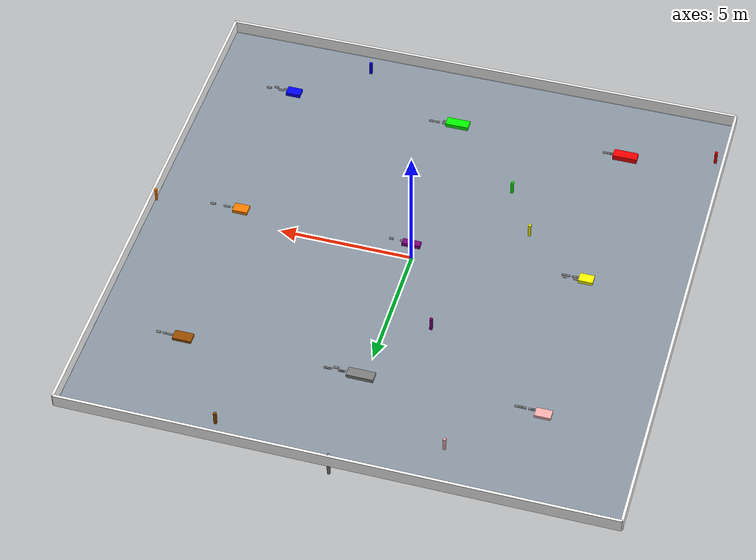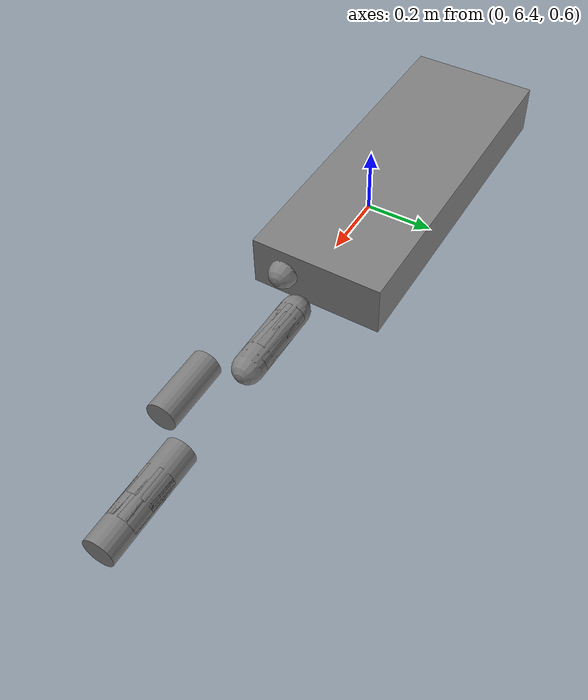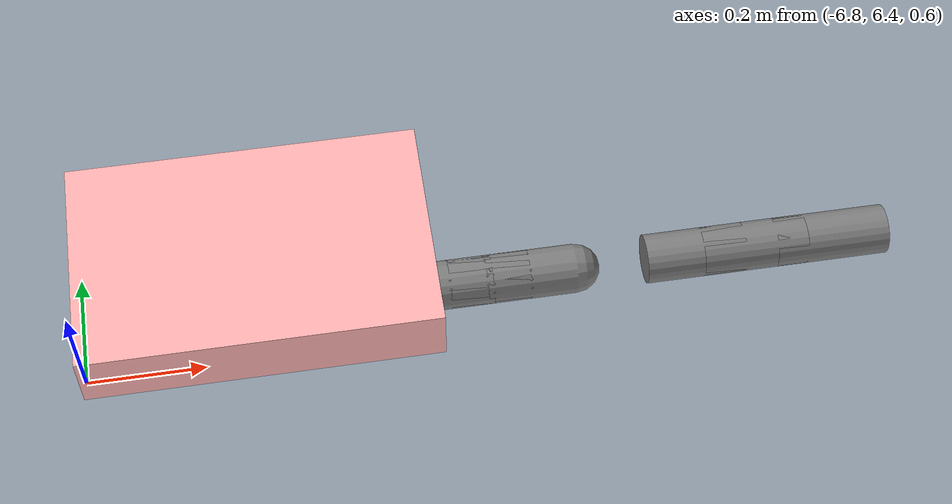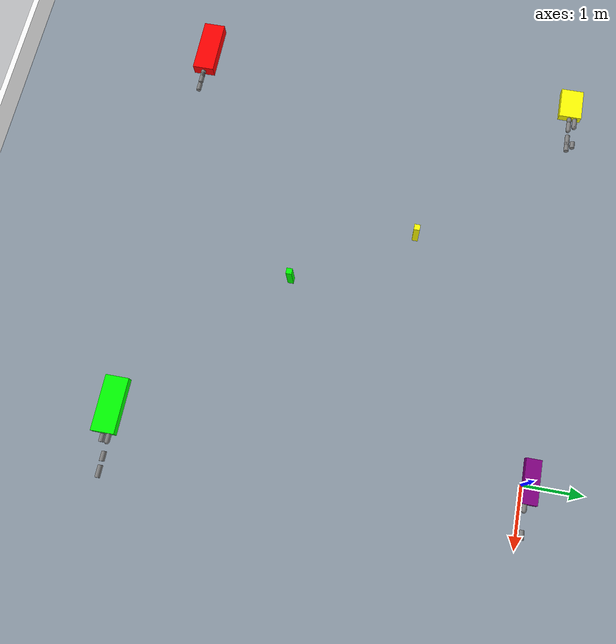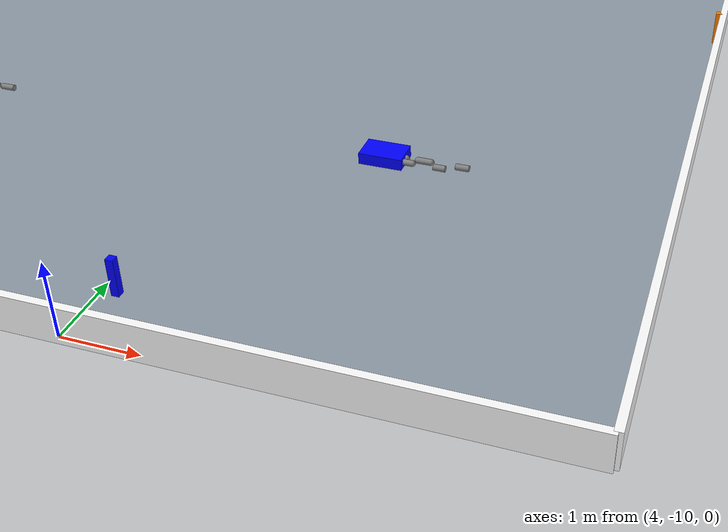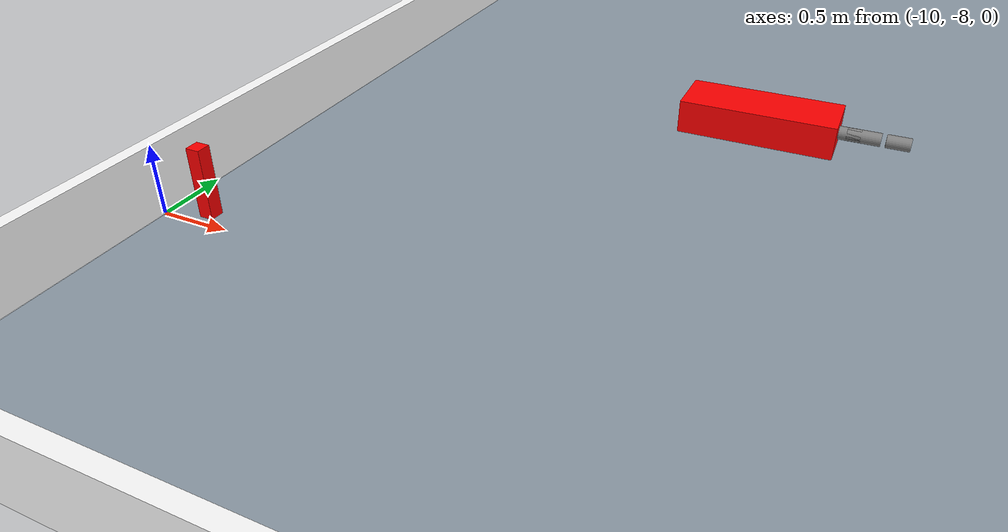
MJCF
<mujoco><option timestep="0.002" /><asset><texture name="checkered" type="2d" builtin="checker" rgb1="0.2 0.3 0.4" rgb2="0.9 0.9 0.9" width="512" height="512" /><material name="MatCheckered" texture="checkered" reflectance="0.5" /><material name="MatPlane" reflectance="0.5" shininess="1" specular="1" /><material name="red" rgba="1 0 0 1" /><material name="green" rgba="0 1 0 1" /><material name="blue" rgba="0 0 1 1" /><material name="yellow" rgba="1 1 0 1" /><material name="purple" rgba="0.5 0 0.5 1" /><material name="orange" rgba="1 0.5 0 1" /><material name="pink" rgba="1 0.7 0.7 1" /><material name="grey" rgba="0.5 0.5 0.5 1" /><material name="brown" rgba="0.6 0.3 0 1" /></asset><worldbody><geom name="floor" type="plane" size="10 10 0.1" pos="0 0 0" material="MatCheckered" /><body name="torso_0" pos="-6.5 -6.5 0.75"><geom name="torso_geom_torso_0" type="box" size="0.45673066282082714 0.18031773918686675 0.09983389958844013" pos="0 0 0" contype="1" conaffinity="1" material="red" /><joint name="torso_0_root" type="free" armature="0" damping="0" limited="false" /><site name="torso_0_site" pos="0 0 0" type="sphere" size="0.01" /><body name="leg_0_1" pos="-0.22836533141041357 0 0"><geom name="leg_0_1_upper_geom" type="capsule" fromto="0.0 0.0 0.0 0.19134875010583652 0.0 0.0" size="0.04" /><joint name="leg_0_1_hip_joint" type="ball" damping="2.0" /><body name="leg_0_1_lower" pos="0.19134875010583652 0.0 0.0"><geom name="leg_0_1_lower_geom" type="capsule" fromto="0.19134875010583652 0.0 0.0 0.37852999139530136 0.0 0.0" size="0.04" /><joint name="leg_0_1_knee_joint" type="hinge" axis="0 1 0" range="-90 90" damping="4.0" limited="true" /><body name="leg_0_1_foot" pos="0.37852999139530136 0.0 0.0"><geom name="leg_0_1_foot_geom" type="cylinder" fromto="0.37852999139530136 0.0 0.0 0.5137162706306135 0.0 0.0" size="0.04" /><joint name="leg_0_1_ankle_joint" type="ball" damping="6.0" /></body></body></body><body name="leg_0_2" pos="-0.22836533141041357 0 0"><geom name="leg_0_2_upper_geom" type="capsule" fromto="0.0 0.0 0.0 0.1251175439799218 0.0 0.0" size="0.04" /><joint name="leg_0_2_hip_joint" type="ball" damping="2.0" /><body name="leg_0_2_lower" pos="0.1251175439799218 0.0 0.0"><geom name="leg_0_2_lower_geom" type="capsule" fromto="0.1251175439799218 0.0 0.0 0.3032230212060134 0.0 0.0" size="0.04" /><joint name="leg_0_2_knee_joint" type="hinge" axis="0 1 0" range="-90 90" damping="4.0" limited="true" /><body name="leg_0_2_foot" pos="0.3032230212060134 0.0 0.0"><geom name="leg_0_2_foot_geom" type="cylinder" fromto="0.3032230212060134 0.0 0.0 0.49339589541612516 0.0 0.0" size="0.04" /><joint name="leg_0_2_ankle_joint" type="ball" damping="6.0" /></body></body></body><body name="leg_0_3" pos="-0.22836533141041357 0 0"><geom name="leg_0_3_upper_geom" type="capsule" fromto="0.0 0.0 0.0 0.14583288129909064 0.0 0.0" size="0.04" /><joint name="leg_0_3_hip_joint" type="ball" damping="2.0" /><body name="leg_0_3_lower" pos="0.14583288129909064 0.0 0.0"><geom name="leg_0_3_lower_geom" type="capsule" fromto="0.14583288129909064 0.0 0.0 0.2670044036594843 0.0 0.0" size="0.04" /><joint name="leg_0_3_knee_joint" type="hinge" axis="0 1 0" range="-90 90" damping="4.0" limited="true" /><body name="leg_0_3_foot" pos="0.2670044036594843 0.0 0.0"><geom name="leg_0_3_foot_geom" type="cylinder" fromto="0.2670044036594843 0.0 0.0 0.3973557180265023 0.0 0.0" size="0.04" /><joint name="leg_0_3_ankle_joint" type="ball" damping="6.0" /></body></body></body></body><geom name="flag_0" type="box" size="0.05 0.05 0.5" pos="-9.715502872661746 -7.882223308985947 0" material="red" contype="1" conaffinity="1" /><body name="torso_1" pos="0 -6.5 0.75"><geom name="torso_geom_torso_1" type="box" size="0.4361155428149704 0.1853569618573218 0.07967056476117033" pos="0 0 0" contype="1" conaffinity="2" material="green" /><joint name="torso_1_root" type="free" armature="0" damping="0" limited="false" /><site name="torso_1_site" pos="0 0 0" type="sphere" size="0.01" /><body name="leg_1_1" pos="0 0.0926784809286609 0"><geom name="leg_1_1_upper_geom" type="capsule" fromto="0.0 0.0 0.0 0.11647771207757 0.0 0.0" size="0.04" /><joint name="leg_1_1_hip_joint" type="ball" damping="2.0" /><body name="leg_1_1_lower" pos="0.11647771207757 0.0 0.0"><geom name="leg_1_1_lower_geom" type="capsule" fromto="0.11647771207757 0.0 0.0 0.29065504208876797 0.0 0.0" size="0.04" /><joint name="leg_1_1_knee_joint" type="hinge" axis="0 1 0" range="-90 90" damping="4.0" limited="true" /><body name="leg_1_1_foot" pos="0.29065504208876797 0.0 0.0"><geom name="leg_1_1_foot_geom" type="cylinder" fromto="0.29065504208876797 0.0 0.0 0.4394491817589016 0.0 0.0" size="0.04" /><joint name="leg_1_1_ankle_joint" type="ball" damping="6.0" /></body></body></body><body name="leg_1_2" pos="0 0.0926784809286609 0"><geom name="leg_1_2_upper_geom" type="capsule" fromto="0.0 0.0 0.0 0.19848603360304248 0.0 0.0" size="0.04" /><joint name="leg_1_2_hip_joint" type="ball" damping="2.0" /><body name="leg_1_2_lower" pos="0.19848603360304248 0.0 0.0"><geom name="leg_1_2_lower_geom" type="capsule" fromto="0.19848603360304248 0.0 0.0 0.35335942091159783 0.0 0.0" size="0.04" /><joint name="leg_1_2_knee_joint" type="hinge" axis="0 1 0" range="-90 90" damping="4.0" limited="true" /><body name="leg_1_2_foot" pos="0.35335942091159783 0.0 0.0"><geom name="leg_1_2_foot_geom" type="cylinder" fromto="0.35335942091159783 0.0 0.0 0.5411384136035422 0.0 0.0" size="0.04" /><joint name="leg_1_2_ankle_joint" type="ball" damping="6.0" /></body></body></body><body name="leg_1_3" pos="-0.2180577714074852 0 0"><geom name="leg_1_3_upper_geom" type="capsule" fromto="0.0 0.0 0.0 0.1322498566570886 0.0 0.0" size="0.04" /><joint name="leg_1_3_hip_joint" type="ball" damping="2.0" /><body name="leg_1_3_lower" pos="0.1322498566570886 0.0 0.0"><geom name="leg_1_3_lower_geom" type="capsule" fromto="0.1322498566570886 0.0 0.0 0.26793260223526116 0.0 0.0" size="0.04" /><joint name="leg_1_3_knee_joint" type="hinge" axis="0 1 0" range="-90 90" damping="4.0" limited="true" /><body name="leg_1_3_foot" pos="0.26793260223526116 0.0 0.0"><geom name="leg_1_3_foot_geom" type="cylinder" fromto="0.26793260223526116 0.0 0.0 0.38986656143791676 0.0 0.0" size="0.04" /><joint name="leg_1_3_ankle_joint" type="ball" damping="6.0" /></body></body></body></body><geom name="flag_1" type="box" size="0.05 0.05 0.5" pos="-2.702629906381044 -4.276086424985271 0" material="green" contype="1" conaffinity="2" /><body name="torso_2" pos="6.5 -6.5 0.75"><geom name="torso_geom_torso_2" type="box" size="0.27710142291960344 0.18385307976890158 0.07352698970238292" pos="0 0 0" contype="1" conaffinity="3" material="blue" /><joint name="torso_2_root" type="free" armature="0" damping="0" limited="false" /><site name="torso_2_site" pos="0 0 0" type="sphere" size="0.01" /><body name="leg_2_1" pos="0.13855071145980172 0 0"><geom name="leg_2_1_upper_geom" type="capsule" fromto="0.0 0.0 0.0 0.1475986095326487 0.0 0.0" size="0.04" /><joint name="leg_2_1_hip_joint" type="ball" damping="2.0" /><body name="leg_2_1_lower" pos="0.1475986095326487 0.0 0.0"><geom name="leg_2_1_lower_geom" type="capsule" fromto="0.1475986095326487 0.0 0.0 0.3147290617853762 0.0 0.0" size="0.04" /><joint name="leg_2_1_knee_joint" type="hinge" axis="0 1 0" range="-90 90" damping="4.0" limited="true" /><body name="leg_2_1_foot" pos="0.3147290617853762 0.0 0.0"><geom name="leg_2_1_foot_geom" type="cylinder" fromto="0.3147290617853762 0.0 0.0 0.48499941278908454 0.0 0.0" size="0.04" /><joint name="leg_2_1_ankle_joint" type="ball" damping="6.0" /></body></body></body><body name="leg_2_2" pos="0 -0.09192653988445079 0"><geom name="leg_2_2_upper_geom" type="capsule" fromto="0.0 0.0 0.0 0.12382817809722703 0.0 0.0" size="0.04" /><joint name="leg_2_2_hip_joint" type="ball" damping="2.0" /><body name="leg_2_2_lower" pos="0.12382817809722703 0.0 0.0"><geom name="leg_2_2_lower_geom" type="capsule" fromto="0.12382817809722703 0.0 0.0 0.2685634560439831 0.0 0.0" size="0.04" /><joint name="leg_2_2_knee_joint" type="hinge" axis="0 1 0" range="-90 90" damping="4.0" limited="true" /><body name="leg_2_2_foot" pos="0.2685634560439831 0.0 0.0"><geom name="leg_2_2_foot_geom" type="cylinder" fromto="0.2685634560439831 0.0 0.0 0.41962847793161295 0.0 0.0" size="0.04" /><joint name="leg_2_2_ankle_joint" type="ball" damping="6.0" /></body></body></body></body><geom name="flag_2" type="box" size="0.05 0.05 0.5" pos="4.200801388571732 -9.138879638256798 0" material="blue" contype="1" conaffinity="3" /><body name="torso_3" pos="-6.5 0 0.75"><geom name="torso_geom_torso_3" type="box" size="0.2667361206778316 0.1890291781063165 0.06752250962156768" pos="0 0 0" contype="1" conaffinity="4" material="yellow" /><joint name="torso_3_root" type="free" armature="0" damping="0" limited="false" /><site name="torso_3_site" pos="0 0 0" type="sphere" size="0.01" /><body name="leg_3_1" pos="0.1333680603389158 0 0"><geom name="leg_3_1_upper_geom" type="capsule" fromto="0.0 0.0 0.0 0.11752958113271068 0.0 0.0" size="0.04" /><joint name="leg_3_1_hip_joint" type="ball" damping="2.0" /><body name="leg_3_1_lower" pos="0.11752958113271068 0.0 0.0"><geom name="leg_3_1_lower_geom" type="capsule" fromto="0.11752958113271068 0.0 0.0 0.24753236078776086 0.0 0.0" size="0.04" /><joint name="leg_3_1_knee_joint" type="hinge" axis="0 1 0" range="-90 90" damping="4.0" limited="true" /><body name="leg_3_1_foot" pos="0.24753236078776086 0.0 0.0"><geom name="leg_3_1_foot_geom" type="cylinder" fromto="0.24753236078776086 0.0 0.0 0.4023332760425279 0.0 0.0" size="0.04" /><joint name="leg_3_1_ankle_joint" type="ball" damping="6.0" /></body></body></body><body name="leg_3_2" pos="0 0.09451458905315825 0"><geom name="leg_3_2_upper_geom" type="capsule" fromto="0.0 0.0 0.0 0.12786140470453047 0.0 0.0" size="0.04" /><joint name="leg_3_2_hip_joint" type="ball" damping="2.0" /><body name="leg_3_2_lower" pos="0.12786140470453047 0.0 0.0"><geom name="leg_3_2_lower_geom" type="capsule" fromto="0.12786140470453047 0.0 0.0 0.29212740537773285 0.0 0.0" size="0.04" /><joint name="leg_3_2_knee_joint" type="hinge" axis="0 1 0" range="-90 90" damping="4.0" limited="true" /><body name="leg_3_2_foot" pos="0.29212740537773285 0.0 0.0"><geom name="leg_3_2_foot_geom" type="cylinder" fromto="0.29212740537773285 0.0 0.0 0.4096014507658057 0.0 0.0" size="0.04" /><joint name="leg_3_2_ankle_joint" type="ball" damping="6.0" /></body></body></body><body name="leg_3_3" pos="-0.1333680603389158 0 0"><geom name="leg_3_3_upper_geom" type="capsule" fromto="0.0 0.0 0.0 0.1618008323869887 0.0 0.0" size="0.04" /><joint name="leg_3_3_hip_joint" type="ball" damping="2.0" /><body name="leg_3_3_lower" pos="0.1618008323869887 0.0 0.0"><geom name="leg_3_3_lower_geom" type="capsule" fromto="0.1618008323869887 0.0 0.0 0.2867447121978153 0.0 0.0" size="0.04" /><joint name="leg_3_3_knee_joint" type="hinge" axis="0 1 0" range="-90 90" damping="4.0" limited="true" /><body name="leg_3_3_foot" pos="0.2867447121978153 0.0 0.0"><geom name="leg_3_3_foot_geom" type="cylinder" fromto="0.2867447121978153 0.0 0.0 0.47296085840796076 0.0 0.0" size="0.04" /><joint name="leg_3_3_ankle_joint" type="ball" damping="6.0" /></body></body></body></body><geom name="flag_3" type="box" size="0.05 0.05 0.5" pos="-3.8584770375979724 -2.296161239787576 0" material="yellow" contype="1" conaffinity="4" /><body name="torso_4" pos="0 0 0.75"><geom name="torso_geom_torso_4" type="box" size="0.33677437006201405 0.12088301522371618 0.07653703224081529" pos="0 0 0" contype="1" conaffinity="5" material="purple" /><joint name="torso_4_root" type="free" armature="0" damping="0" limited="false" /><site name="torso_4_site" pos="0 0 0" type="sphere" size="0.01" /><body name="leg_4_1" pos="0 -0.06044150761185809 0"><geom name="leg_4_1_upper_geom" type="capsule" fromto="0.0 0.0 0.0 0.14596158616241114 0.0 0.0" size="0.04" /><joint name="leg_4_1_hip_joint" type="ball" damping="2.0" /><body name="leg_4_1_lower" pos="0.14596158616241114 0.0 0.0"><geom name="leg_4_1_lower_geom" type="capsule" fromto="0.14596158616241114 0.0 0.0 0.279742887019907 0.0 0.0" size="0.04" /><joint name="leg_4_1_knee_joint" type="hinge" axis="0 1 0" range="-90 90" damping="4.0" limited="true" /><body name="leg_4_1_foot" pos="0.279742887019907 0.0 0.0"><geom name="leg_4_1_foot_geom" type="cylinder" fromto="0.279742887019907 0.0 0.0 0.4237752228046575 0.0 0.0" size="0.04" /><joint name="leg_4_1_ankle_joint" type="ball" damping="6.0" /></body></body></body></body><geom name="flag_4" type="box" size="0.05 0.05 0.5" pos="-1.595599832349964 3.1151342146053302 0" material="purple" contype="1" conaffinity="5" /><body name="torso_5" pos="6.5 0 0.75"><geom name="torso_geom_torso_5" type="box" size="0.27910796986527076 0.19385913140496652 0.06810284901716221" pos="0 0 0" contype="1" conaffinity="6" material="orange" /><joint name="torso_5_root" type="free" armature="0" damping="0" limited="false" /><site name="torso_5_site" pos="0 0 0" type="sphere" size="0.01" /><body name="leg_5_1" pos="0.13955398493263538 0 0"><geom name="leg_5_1_upper_geom" type="capsule" fromto="0.0 0.0 0.0 0.15884223762782185 0.0 0.0" size="0.04" /><joint name="leg_5_1_hip_joint" type="ball" damping="2.0" /><body name="leg_5_1_lower" pos="0.15884223762782185 0.0 0.0"><geom name="leg_5_1_lower_geom" type="capsule" fromto="0.15884223762782185 0.0 0.0 0.3461261877342965 0.0 0.0" size="0.04" /><joint name="leg_5_1_knee_joint" type="hinge" axis="0 1 0" range="-90 90" damping="4.0" limited="true" /><body name="leg_5_1_foot" pos="0.3461261877342965 0.0 0.0"><geom name="leg_5_1_foot_geom" type="cylinder" fromto="0.3461261877342965 0.0 0.0 0.5322099372082175 0.0 0.0" size="0.04" /><joint name="leg_5_1_ankle_joint" type="ball" damping="6.0" /></body></body></body></body><geom name="flag_5" type="box" size="0.05 0.05 0.5" pos="9.982538084529573 -0.34918260237459164 0" material="orange" contype="1" conaffinity="6" /><body name="torso_6" pos="-6.5 6.5 0.75"><geom name="torso_geom_torso_6" type="box" size="0.29137715618754184 0.18632517681537722 0.05353026217323795" pos="0 0 0" contype="1" conaffinity="7" material="pink" /><joint name="torso_6_root" type="free" armature="0" damping="0" limited="false" /><site name="torso_6_site" pos="0 0 0" type="sphere" size="0.01" /><body name="leg_6_1" pos="0 -0.09316258840768861 0"><geom name="leg_6_1_upper_geom" type="capsule" fromto="0.0 0.0 0.0 0.18501982875361223 0.0 0.0" size="0.04" /><joint name="leg_6_1_hip_joint" type="ball" damping="2.0" /><body name="leg_6_1_lower" pos="0.18501982875361223 0.0 0.0"><geom name="leg_6_1_lower_geom" type="capsule" fromto="0.18501982875361223 0.0 0.0 0.33158454665107273 0.0 0.0" size="0.04" /><joint name="leg_6_1_knee_joint" type="hinge" axis="0 1 0" range="-90 90" damping="4.0" limited="true" /><body name="leg_6_1_foot" pos="0.33158454665107273 0.0 0.0"><geom name="leg_6_1_foot_geom" type="cylinder" fromto="0.33158454665107273 0.0 0.0 0.5161514691046316 0.0 0.0" size="0.04" /><joint name="leg_6_1_ankle_joint" type="ball" damping="6.0" /></body></body></body><body name="leg_6_2" pos="0 -0.09316258840768861 0"><geom name="leg_6_2_upper_geom" type="capsule" fromto="0.0 0.0 0.0 0.12628140099512358 0.0 0.0" size="0.04" /><joint name="leg_6_2_hip_joint" type="ball" damping="2.0" /><body name="leg_6_2_lower" pos="0.12628140099512358 0.0 0.0"><geom name="leg_6_2_lower_geom" type="capsule" fromto="0.12628140099512358 0.0 0.0 0.25289257737624526 0.0 0.0" size="0.04" /><joint name="leg_6_2_knee_joint" type="hinge" axis="0 1 0" range="-90 90" damping="4.0" limited="true" /><body name="leg_6_2_foot" pos="0.25289257737624526 0.0 0.0"><geom name="leg_6_2_foot_geom" type="cylinder" fromto="0.25289257737624526 0.0 0.0 0.416903476540581 0.0 0.0" size="0.04" /><joint name="leg_6_2_ankle_joint" type="ball" damping="6.0" /></body></body></body><body name="leg_6_3" pos="0 -0.09316258840768861 0"><geom name="leg_6_3_upper_geom" type="capsule" fromto="0.0 0.0 0.0 0.15481660872583805 0.0 0.0" size="0.04" /><joint name="leg_6_3_hip_joint" type="ball" damping="2.0" /><body name="leg_6_3_lower" pos="0.15481660872583805 0.0 0.0"><geom name="leg_6_3_lower_geom" type="capsule" fromto="0.15481660872583805 0.0 0.0 0.2857181441085962 0.0 0.0" size="0.04" /><joint name="leg_6_3_knee_joint" type="hinge" axis="0 1 0" range="-90 90" damping="4.0" limited="true" /><body name="leg_6_3_foot" pos="0.2857181441085962 0.0 0.0"><geom name="leg_6_3_foot_geom" type="cylinder" fromto="0.2857181441085962 0.0 0.0 0.45838974200002824 0.0 0.0" size="0.04" /><joint name="leg_6_3_ankle_joint" type="ball" damping="6.0" /></body></body></body></body><geom name="flag_6" type="box" size="0.05 0.05 0.5" pos="-3.4815412435326354 8.27169600538735 0" material="pink" contype="1" conaffinity="7" /><body name="torso_7" pos="0 6.5 0.75"><geom name="torso_geom_torso_7" type="box" size="0.4869551706574689 0.18423844265559644 0.07303456001066934" pos="0 0 0" contype="1" conaffinity="8" material="grey" /><joint name="torso_7_root" type="free" armature="0" damping="0" limited="false" /><site name="torso_7_site" pos="0 0 0" type="sphere" size="0.01" /><body name="leg_7_1" pos="0 -0.09211922132779822 0"><geom name="leg_7_1_upper_geom" type="capsule" fromto="0.0 0.0 0.0 0.15041793830888592 0.0 0.0" size="0.04" /><joint name="leg_7_1_hip_joint" type="ball" damping="2.0" /><body name="leg_7_1_lower" pos="0.15041793830888592 0.0 0.0"><geom name="leg_7_1_lower_geom" type="capsule" fromto="0.15041793830888592 0.0 0.0 0.3398287850489801 0.0 0.0" size="0.04" /><joint name="leg_7_1_knee_joint" type="hinge" axis="0 1 0" range="-90 90" damping="4.0" limited="true" /><body name="leg_7_1_foot" pos="0.3398287850489801 0.0 0.0"><geom name="leg_7_1_foot_geom" type="cylinder" fromto="0.3398287850489801 0.0 0.0 0.5199871593237864 0.0 0.0" size="0.04" /><joint name="leg_7_1_ankle_joint" type="ball" damping="6.0" /></body></body></body><body name="leg_7_2" pos="0.24347758532873445 0 0"><geom name="leg_7_2_upper_geom" type="capsule" fromto="0.0 0.0 0.0 0.1920029125222797 0.0 0.0" size="0.04" /><joint name="leg_7_2_hip_joint" type="ball" damping="2.0" /><body name="leg_7_2_lower" pos="0.1920029125222797 0.0 0.0"><geom name="leg_7_2_lower_geom" type="capsule" fromto="0.1920029125222797 0.0 0.0 0.3108622592127082 0.0 0.0" size="0.04" /><joint name="leg_7_2_knee_joint" type="hinge" axis="0 1 0" range="-90 90" damping="4.0" limited="true" /><body name="leg_7_2_foot" pos="0.3108622592127082 0.0 0.0"><geom name="leg_7_2_foot_geom" type="cylinder" fromto="0.3108622592127082 0.0 0.0 0.4657449276293985 0.0 0.0" size="0.04" /><joint name="leg_7_2_ankle_joint" type="ball" damping="6.0" /></body></body></body><body name="leg_7_3" pos="0.24347758532873445 0 0"><geom name="leg_7_3_upper_geom" type="capsule" fromto="0.0 0.0 0.0 0.17026008864513145 0.0 0.0" size="0.04" /><joint name="leg_7_3_hip_joint" type="ball" damping="2.0" /><body name="leg_7_3_lower" pos="0.17026008864513145 0.0 0.0"><geom name="leg_7_3_lower_geom" type="capsule" fromto="0.17026008864513145 0.0 0.0 0.35950564773794824 0.0 0.0" size="0.04" /><joint name="leg_7_3_knee_joint" type="hinge" axis="0 1 0" range="-90 90" damping="4.0" limited="true" /><body name="leg_7_3_foot" pos="0.35950564773794824 0.0 0.0"><geom name="leg_7_3_foot_geom" type="cylinder" fromto="0.35950564773794824 0.0 0.0 0.49613280687904054 0.0 0.0" size="0.04" /><joint name="leg_7_3_ankle_joint" type="ball" damping="6.0" /></body></body></body><body name="leg_7_4" pos="0.24347758532873445 0 0"><geom name="leg_7_4_upper_geom" type="capsule" fromto="0.0 0.0 0.0 0.1786128234715569 0.0 0.0" size="0.04" /><joint name="leg_7_4_hip_joint" type="ball" damping="2.0" /><body name="leg_7_4_lower" pos="0.1786128234715569 0.0 0.0"><geom name="leg_7_4_lower_geom" type="capsule" fromto="0.1786128234715569 0.0 0.0 0.3722628273647567 0.0 0.0" size="0.04" /><joint name="leg_7_4_knee_joint" type="hinge" axis="0 1 0" range="-90 90" damping="4.0" limited="true" /><body name="leg_7_4_foot" pos="0.3722628273647567 0.0 0.0"><geom name="leg_7_4_foot_geom" type="cylinder" fromto="0.3722628273647567 0.0 0.0 0.5455859172804947 0.0 0.0" size="0.04" /><joint name="leg_7_4_ankle_joint" type="ball" damping="6.0" /></body></body></body></body><geom name="flag_7" type="box" size="0.05 0.05 0.5" pos="0.12390716769328443 9.997806028611969 0" material="grey" contype="1" conaffinity="8" /><body name="torso_8" pos="6.5 6.5 0.75"><geom name="torso_geom_torso_8" type="box" size="0.34864485038335136 0.19233670913998374 0.05502190046291183" pos="0 0 0" contype="1" conaffinity="9" material="brown" /><joint name="torso_8_root" type="free" armature="0" damping="0" limited="false" /><site name="torso_8_site" pos="0 0 0" type="sphere" size="0.01" /><body name="leg_8_1" pos="-0.17432242519167568 0 0"><geom name="leg_8_1_upper_geom" type="capsule" fromto="0.0 0.0 0.0 0.1394766231845218 0.0 0.0" size="0.04" /><joint name="leg_8_1_hip_joint" type="ball" damping="2.0" /><body name="leg_8_1_lower" pos="0.1394766231845218 0.0 0.0"><geom name="leg_8_1_lower_geom" type="capsule" fromto="0.1394766231845218 0.0 0.0 0.3308827223944103 0.0 0.0" size="0.04" /><joint name="leg_8_1_knee_joint" type="hinge" axis="0 1 0" range="-90 90" damping="4.0" limited="true" /><body name="leg_8_1_foot" pos="0.3308827223944103 0.0 0.0"><geom name="leg_8_1_foot_geom" type="cylinder" fromto="0.3308827223944103 0.0 0.0 0.44431492585091903 0.0 0.0" size="0.04" /><joint name="leg_8_1_ankle_joint" type="ball" damping="6.0" /></body></body></body><body name="leg_8_2" pos="0.17432242519167568 0 0"><geom name="leg_8_2_upper_geom" type="capsule" fromto="0.0 0.0 0.0 0.11867884462175021 0.0 0.0" size="0.04" /><joint name="leg_8_2_hip_joint" type="ball" damping="2.0" /><body name="leg_8_2_lower" pos="0.11867884462175021 0.0 0.0"><geom name="leg_8_2_lower_geom" type="capsule" fromto="0.11867884462175021 0.0 0.0 0.26560036327234726 0.0 0.0" size="0.04" /><joint name="leg_8_2_knee_joint" type="hinge" axis="0 1 0" range="-90 90" damping="4.0" limited="true" /><body name="leg_8_2_foot" pos="0.26560036327234726 0.0 0.0"><geom name="leg_8_2_foot_geom" type="cylinder" fromto="0.26560036327234726 0.0 0.0 0.4320577198948149 0.0 0.0" size="0.04" /><joint name="leg_8_2_ankle_joint" type="ball" damping="6.0" /></body></body></body></body><geom name="flag_8" type="box" size="0.05 0.05 0.5" pos="4.400815812293695 9.300611673560585 0" material="brown" contype="1" conaffinity="9" /><geom name="north_wall" type="box" pos="0 10.05 0.25" size="10.05 0.05 0.25" material="MatPlane" /><geom name="south_wall" type="box" pos="0 -10.05 0.25" size="10.05 0.05 0.25" material="MatPlane" /><geom name="east_wall" type="box" pos="10.05 0 0.25" size="0.05 10.05 0.25" material="MatPlane" /><geom name="west_wall" type="box" pos="-10.05 0 0.25" size="0.05 10.05 0.25" material="MatPlane" /></worldbody><actuator><motor name="leg_0_1_hip_motor" joint="leg_0_1_hip_joint" ctrllimited="true" ctrlrange="-1 1" gear="200" /><motor name="leg_0_1_ankle_joint_motor" joint="leg_0_1_ankle_joint" ctrllimited="true" ctrlrange="-1 1" gear="200" /><motor name="leg_0_2_hip_motor" joint="leg_0_2_hip_joint" ctrllimited="true" ctrlrange="-1 1" gear="200" /><motor name="leg_0_2_ankle_joint_motor" joint="leg_0_2_ankle_joint" ctrllimited="true" ctrlrange="-1 1" gear="200" /><motor name="leg_0_3_hip_motor" joint="leg_0_3_hip_joint" ctrllimited="true" ctrlrange="-1 1" gear="200" /><motor name="leg_0_3_ankle_joint_motor" joint="leg_0_3_ankle_joint" ctrllimited="true" ctrlrange="-1 1" gear="200" /><motor name="leg_1_1_hip_motor" joint="leg_1_1_hip_joint" ctrllimited="true" ctrlrange="-1 1" gear="200" /><motor name="leg_1_1_ankle_joint_motor" joint="leg_1_1_ankle_joint" ctrllimited="true" ctrlrange="-1 1" gear="200" /><motor name="leg_1_2_hip_motor" joint="leg_1_2_hip_joint" ctrllimited="true" ctrlrange="-1 1" gear="200" /><motor name="leg_1_2_ankle_joint_motor" joint="leg_1_2_ankle_joint" ctrllimited="true" ctrlrange="-1 1" gear="200" /><motor name="leg_1_3_hip_motor" joint="leg_1_3_hip_joint" ctrllimited="true" ctrlrange="-1 1" gear="200" /><motor name="leg_1_3_ankle_joint_motor" joint="leg_1_3_ankle_joint" ctrllimited="true" ctrlrange="-1 1" gear="200" /><motor name="leg_2_1_hip_motor" joint="leg_2_1_hip_joint" ctrllimited="true" ctrlrange="-1 1" gear="200" /><motor name="leg_2_1_ankle_joint_motor" joint="leg_2_1_ankle_joint" ctrllimited="true" ctrlrange="-1 1" gear="200" /><motor name="leg_2_2_hip_motor" joint="leg_2_2_hip_joint" ctrllimited="true" ctrlrange="-1 1" gear="200" /><motor name="leg_2_2_ankle_joint_motor" joint="leg_2_2_ankle_joint" ctrllimited="true" ctrlrange="-1 1" gear="200" /><motor name="leg_3_1_hip_motor" joint="leg_3_1_hip_joint" ctrllimited="true" ctrlrange="-1 1" gear="200" /><motor name="leg_3_1_ankle_joint_motor" joint="leg_3_1_ankle_joint" ctrllimited="true" ctrlrange="-1 1" gear="200" /><motor name="leg_3_2_hip_motor" joint="leg_3_2_hip_joint" ctrllimited="true" ctrlrange="-1 1" gear="200" /><motor name="leg_3_2_ankle_joint_motor" joint="leg_3_2_ankle_joint" ctrllimited="true" ctrlrange="-1 1" gear="200" /><motor name="leg_3_3_hip_motor" joint="leg_3_3_hip_joint" ctrllimited="true" ctrlrange="-1 1" gear="200" /><motor name="leg_3_3_ankle_joint_motor" joint="leg_3_3_ankle_joint" ctrllimited="true" ctrlrange="-1 1" gear="200" /><motor name="leg_4_1_hip_motor" joint="leg_4_1_hip_joint" ctrllimited="true" ctrlrange="-1 1" gear="200" /><motor name="leg_4_1_ankle_joint_motor" joint="leg_4_1_ankle_joint" ctrllimited="true" ctrlrange="-1 1" gear="200" /><motor name="leg_5_1_hip_motor" joint="leg_5_1_hip_joint" ctrllimited="true" ctrlrange="-1 1" gear="200" /><motor name="leg_5_1_ankle_joint_motor" joint="leg_5_1_ankle_joint" ctrllimited="true" ctrlrange="-1 1" gear="200" /><motor name="leg_6_1_hip_motor" joint="leg_6_1_hip_joint" ctrllimited="true" ctrlrange="-1 1" gear="200" /><motor name="leg_6_1_ankle_joint_motor" joint="leg_6_1_ankle_joint" ctrllimited="true" ctrlrange="-1 1" gear="200" /><motor name="leg_6_2_hip_motor" joint="leg_6_2_hip_joint" ctrllimited="true" ctrlrange="-1 1" gear="200" /><motor name="leg_6_2_ankle_joint_motor" joint="leg_6_2_ankle_joint" ctrllimited="true" ctrlrange="-1 1" gear="200" /><motor name="leg_6_3_hip_motor" joint="leg_6_3_hip_joint" ctrllimited="true" ctrlrange="-1 1" gear="200" /><motor name="leg_6_3_ankle_joint_motor" joint="leg_6_3_ankle_joint" ctrllimited="true" ctrlrange="-1 1" gear="200" /><motor name="leg_7_1_hip_motor" joint="leg_7_1_hip_joint" ctrllimited="true" ctrlrange="-1 1" gear="200" /><motor name="leg_7_1_ankle_joint_motor" joint="leg_7_1_ankle_joint" ctrllimited="true" ctrlrange="-1 1" gear="200" /><motor name="leg_7_2_hip_motor" joint="leg_7_2_hip_joint" ctrllimited="true" ctrlrange="-1 1" gear="200" /><motor name="leg_7_2_ankle_joint_motor" joint="leg_7_2_ankle_joint" ctrllimited="true" ctrlrange="-1 1" gear="200" /><motor name="leg_7_3_hip_motor" joint="leg_7_3_hip_joint" ctrllimited="true" ctrlrange="-1 1" gear="200" /><motor name="leg_7_3_ankle_joint_motor" joint="leg_7_3_ankle_joint" ctrllimited="true" ctrlrange="-1 1" gear="200" /><motor name="leg_7_4_hip_motor" joint="leg_7_4_hip_joint" ctrllimited="true" ctrlrange="-1 1" gear="200" /><motor name="leg_7_4_ankle_joint_motor" joint="leg_7_4_ankle_joint" ctrllimited="true" ctrlrange="-1 1" gear="200" /><motor name="leg_8_1_hip_motor" joint="leg_8_1_hip_joint" ctrllimited="true" ctrlrange="-1 1" gear="200" /><motor name="leg_8_1_ankle_joint_motor" joint="leg_8_1_ankle_joint" ctrllimited="true" ctrlrange="-1 1" gear="200" /><motor name="leg_8_2_hip_motor" joint="leg_8_2_hip_joint" ctrllimited="true" ctrlrange="-1 1" gear="200" /><motor name="leg_8_2_ankle_joint_motor" joint="leg_8_2_ankle_joint" ctrllimited="true" ctrlrange="-1 1" gear="200" /></actuator><sensor><accelerometer name="torso_0_accel" site="torso_0_site" /><gyro name="torso_0_gyro" site="torso_0_site" /><accelerometer name="torso_1_accel" site="torso_1_site" /><gyro name="torso_1_gyro" site="torso_1_site" /><accelerometer name="torso_2_accel" site="torso_2_site" /><gyro name="torso_2_gyro" site="torso_2_site" /><accelerometer name="torso_3_accel" site="torso_3_site" /><gyro name="torso_3_gyro" site="torso_3_site" /><accelerometer name="torso_4_accel" site="torso_4_site" /><gyro name="torso_4_gyro" site="torso_4_site" /><accelerometer name="torso_5_accel" site="torso_5_site" /><gyro name="torso_5_gyro" site="torso_5_site" /><accelerometer name="torso_6_accel" site="torso_6_site" /><gyro name="torso_6_gyro" site="torso_6_site" /><accelerometer name="torso_7_accel" site="torso_7_site" /><gyro name="torso_7_gyro" site="torso_7_site" /><accelerometer name="torso_8_accel" site="torso_8_site" /><gyro name="torso_8_gyro" site="torso_8_site" /></sensor></mujoco>
